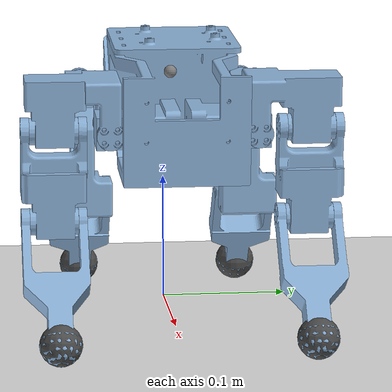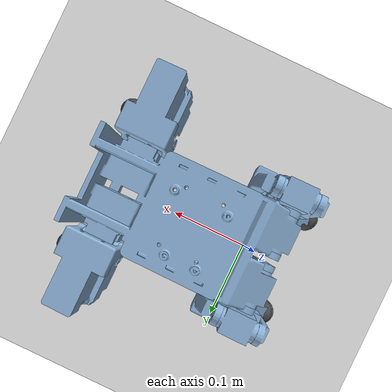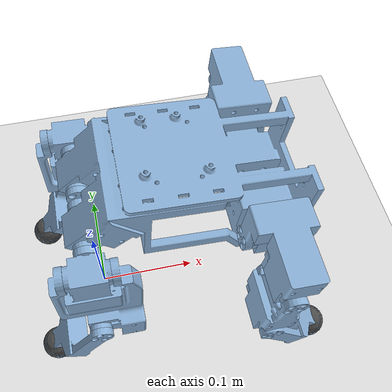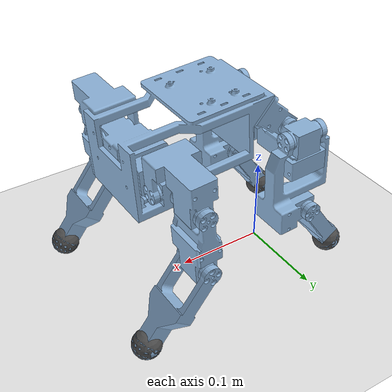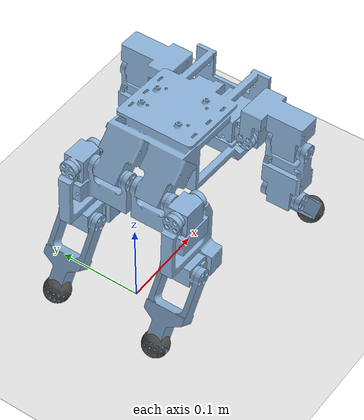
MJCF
<mujoco model="koala_walking">
  <!-- Generated by koala_hardware/mjcf.py from koala-bot CAD, walking pose (DEC-62). Do not hand-edit. -->
  <!-- visuals: one STL per body in meshes/ (mm, scaled), the body's prints unioned with its servo case(s) at the CAD socket frames; tolerance 0.2 mm / 0.6 rad -->
  <!-- omitted mass: fasteners, horn/ear screw heads, neck servo envelopes (unbought), battery, electronics, head, cables. Total 1.515 kg; CoM world 0.080713 0.000014 0.144787 m in this pose. -->
  <!-- contacts: four sphere feet (contype 1) and a torso box (contype 2) for fall detection only; link meshes do not collide -->
  <!-- joint ranges: the viewer's shared-slider clearance bounds (viewer-endpoints.json), one slider per axis for all limbs; no per-joint search exists. NOT servo limits -->
  <!-- actuator: Open Duck 7.4 V BAM placeholder, NOT the 12 V unit -->
  <!-- CAD "right" is +Y (params.py body +Y right). With X forward / Z up that is the robot LEFT in a right-handed frame; names below follow the CAD. -->
  <compiler angle="degree" meshdir="meshes"/>
  <option timestep="0.002"/>
  <visual><global offwidth="1280" offheight="960"/></visual>
  <default>
    <default class="sts3215">
      <joint type="hinge" damping="0.56" frictionloss="0.068" armature="0.027" limited="true"/>
      <position kp="13.37" forcerange="-3.23 3.23"/>
    </default>
    <default class="visual"><geom contype="0" conaffinity="0" group="1" rgba="0.55 0.7 0.85 1"/></default>
    <default class="foot"><geom type="sphere" contype="1" conaffinity="1" condim="3" friction="0.8" rgba="0.3 0.3 0.3 1"/></default>
  </default>
  <asset>
    <mesh name="torso" file="torso.stl" scale="0.001 0.001 0.001"/>
    <mesh name="rear_right_carrier" file="rear_right_carrier.stl" scale="0.001 0.001 0.001"/>
    <mesh name="rear_right_upper" file="rear_right_upper.stl" scale="0.001 0.001 0.001"/>
    <mesh name="rear_right_lower" file="rear_right_lower.stl" scale="0.001 0.001 0.001"/>
    <mesh name="rear_left_carrier" file="rear_left_carrier.stl" scale="0.001 0.001 0.001"/>
    <mesh name="rear_left_upper" file="rear_left_upper.stl" scale="0.001 0.001 0.001"/>
    <mesh name="rear_left_lower" file="rear_left_lower.stl" scale="0.001 0.001 0.001"/>
    <mesh name="front_right_carrier" file="front_right_carrier.stl" scale="0.001 0.001 0.001"/>
    <mesh name="front_right_upper" file="front_right_upper.stl" scale="0.001 0.001 0.001"/>
    <mesh name="front_right_lower" file="front_right_lower.stl" scale="0.001 0.001 0.001"/>
    <mesh name="front_left_carrier" file="front_left_carrier.stl" scale="0.001 0.001 0.001"/>
    <mesh name="front_left_upper" file="front_left_upper.stl" scale="0.001 0.001 0.001"/>
    <mesh name="front_left_lower" file="front_left_lower.stl" scale="0.001 0.001 0.001"/>
  </asset>
  <worldbody>
    <light pos="0 0 2" dir="0 0 -1" directional="true"/>
    <geom name="floor" type="plane" size="0 0 0.05" contype="1" conaffinity="3" friction="0.8" rgba="0.9 0.9 0.9 1"/>
    <body name="torso" pos="0.000000 0.000000 0.175000">
      <freejoint name="floating_base"/>
      <site name="imu" pos="0.06 0 0.02"/>
      <inertial pos="0.093193 0.000007 0.003644" mass="0.58020" fullinertia="9.354e-04 2.660e-03 2.905e-03 1.239e-07 4.711e-04 -2.104e-07"/>
      <geom name="torso_box" type="box" size="0.041000 0.047000 0.082142" pos="0.101466 0.000000 -0.001768" euler="0 93.8226 0" contype="2" conaffinity="2" group="3" rgba="0.6 0.6 0.7 0.3"/>
      <geom class="visual" type="mesh" mesh="torso"/>
      <body name="rear_right_carrier" pos="0.000000 0.026250 0.000000">
        <joint name="rear_right_hip_pitch" class="sts3215" axis="0.000000 1.000000 0.000000" range="-43.5 107.5"/>
        <inertial pos="-0.000837 0.029115 -0.019011" mass="0.10146" fullinertia="6.267e-05 3.058e-05 5.300e-05 -2.780e-07 -4.064e-07 -5.141e-06"/>
        <geom class="visual" type="mesh" mesh="rear_right_carrier"/>
        <body name="rear_right_upper" pos="0.000000 0.040050 0.000000">
          <joint name="rear_right_hip_roll" class="sts3215" axis="0.998944 0.000000 -0.045940" range="-16.0 29.25"/>
          <inertial pos="0.010219 -0.000031 -0.071767" mass="0.10506" fullinertia="7.378e-05 1.028e-04 4.894e-05 4.983e-08 8.699e-06 -4.758e-08"/>
          <geom class="visual" type="mesh" mesh="rear_right_upper"/>
          <body name="rear_right_lower" pos="-0.003905 0.000000 -0.084910">
            <joint name="rear_right_knee" class="sts3215" axis="0.000000 1.000000 0.000000" range="-61.25 89.25"/>
            <inertial pos="-0.032930 0.000628 -0.047750" mass="0.03787" fullinertia="2.733e-05 3.053e-05 1.750e-05 -2.673e-07 -1.293e-05 -3.876e-07"/>
            <geom class="visual" type="mesh" mesh="rear_right_lower"/>
            <geom name="rear_right_pad" class="foot" size="0.0160" pos="-0.051095 0.000000 -0.074090" mass="0"/>
            <site name="rear_right_foot" pos="-0.051095 0.000000 -0.074090"/>
          </body>
        </body>
      </body>
      <body name="rear_left_carrier" pos="0.000000 -0.026250 0.000000">
        <joint name="rear_left_hip_pitch" class="sts3215" axis="0.000000 1.000000 0.000000" range="-43.5 107.5"/>
        <inertial pos="-0.000837 -0.029115 -0.019011" mass="0.10146" fullinertia="6.267e-05 3.058e-05 5.300e-05 2.780e-07 -4.064e-07 5.141e-06"/>
        <geom class="visual" type="mesh" mesh="rear_left_carrier"/>
        <body name="rear_left_upper" pos="0.000000 -0.040050 0.000000">
          <joint name="rear_left_hip_roll" class="sts3215" axis="-0.998944 -0.000000 0.045940" range="-16.0 29.25"/>
          <inertial pos="0.010213 0.000031 -0.071820" mass="0.10470" fullinertia="7.337e-05 1.022e-04 4.869e-05 -4.949e-08 8.628e-06 4.706e-08"/>
          <geom class="visual" type="mesh" mesh="rear_left_upper"/>
          <body name="rear_left_lower" pos="-0.003905 0.000000 -0.084910">
            <joint name="rear_left_knee" class="sts3215" axis="0.000000 1.000000 0.000000" range="-61.25 89.25"/>
            <inertial pos="-0.032932 -0.000627 -0.047752" mass="0.03786" fullinertia="2.732e-05 3.053e-05 1.749e-05 2.672e-07 -1.293e-05 3.875e-07"/>
            <geom class="visual" type="mesh" mesh="rear_left_lower"/>
            <geom name="rear_left_pad" class="foot" size="0.0160" pos="-0.051095 0.000000 -0.074090" mass="0"/>
            <site name="rear_left_foot" pos="-0.051095 0.000000 -0.074090"/>
          </body>
        </body>
      </body>
      <body name="front_right_carrier" pos="0.149666 0.055115 -0.010000">
        <joint name="front_right_shoulder_roll" class="sts3215" axis="0.997775 0.000000 -0.066667" range="-16.0 29.25"/>
        <inertial pos="0.000940 0.030137 0.019045" mass="0.09448" fullinertia="5.414e-05 3.032e-05 4.539e-05 -3.966e-07 -3.290e-07 6.277e-06"/>
        <geom class="visual" type="mesh" mesh="front_right_carrier"/>
        <body name="front_right_upper" pos="0.000000 0.040000 0.000000">
          <joint name="front_right_shoulder_pitch" class="sts3215" axis="0.000000 1.000000 0.000000" range="-43.5 107.5"/>
          <inertial pos="-0.003796 0.000624 -0.046639" mass="0.08704" fullinertia="4.690e-05 3.700e-05 1.933e-05 -5.590e-08 -2.259e-06 -6.868e-07"/>
          <geom class="visual" type="mesh" mesh="front_right_upper"/>
          <body name="front_right_lower" pos="-0.005679 0.000000 -0.069769">
            <joint name="front_right_elbow" class="sts3215" axis="0.000000 1.000000 0.000000" range="-61.25 89.25"/>
            <inertial pos="0.038531 0.000630 -0.050037" mass="0.04145" fullinertia="3.097e-05 3.826e-05 2.199e-05 3.402e-07 1.698e-05 -4.418e-07"/>
            <geom class="visual" type="mesh" mesh="front_right_lower"/>
            <geom name="front_right_pad" class="foot" size="0.0160" pos="0.061012 0.000000 -0.079231" mass="0"/>
            <site name="front_right_foot" pos="0.061012 0.000000 -0.079231"/>
          </body>
        </body>
      </body>
      <body name="front_left_carrier" pos="0.149666 -0.055115 -0.010000">
        <joint name="front_left_shoulder_roll" class="sts3215" axis="-0.997775 -0.000000 0.066667" range="-16.0 29.25"/>
        <inertial pos="0.000940 -0.030132 0.019048" mass="0.09452" fullinertia="5.417e-05 3.033e-05 4.542e-05 3.970e-07 -3.288e-07 -6.280e-06"/>
        <geom class="visual" type="mesh" mesh="front_left_carrier"/>
        <body name="front_left_upper" pos="0.000000 -0.040000 0.000000">
          <joint name="front_left_shoulder_pitch" class="sts3215" axis="0.000000 1.000000 0.000000" range="-43.5 107.5"/>
          <inertial pos="-0.003795 -0.000625 -0.046629" mass="0.08709" fullinertia="4.694e-05 3.703e-05 1.935e-05 5.594e-08 -2.261e-06 6.873e-07"/>
          <geom class="visual" type="mesh" mesh="front_left_upper"/>
          <body name="front_left_lower" pos="-0.005679 0.000000 -0.069769">
            <joint name="front_left_elbow" class="sts3215" axis="0.000000 1.000000 0.000000" range="-61.25 89.25"/>
            <inertial pos="0.038531 -0.000630 -0.050037" mass="0.04145" fullinertia="3.097e-05 3.826e-05 2.199e-05 -3.402e-07 1.698e-05 4.418e-07"/>
            <geom class="visual" type="mesh" mesh="front_left_lower"/>
            <geom name="front_left_pad" class="foot" size="0.0160" pos="0.061012 0.000000 -0.079231" mass="0"/>
            <site name="front_left_foot" pos="0.061012 0.000000 -0.079231"/>
          </body>
        </body>
      </body>
    </body>
  </worldbody>
  <actuator>
    <position class="sts3215" name="rear_right_hip_pitch" joint="rear_right_hip_pitch" inheritrange="1"/>
    <position class="sts3215" name="rear_right_hip_roll" joint="rear_right_hip_roll" inheritrange="1"/>
    <position class="sts3215" name="rear_right_knee" joint="rear_right_knee" inheritrange="1"/>
    <position class="sts3215" name="rear_left_hip_pitch" joint="rear_left_hip_pitch" inheritrange="1"/>
    <position class="sts3215" name="rear_left_hip_roll" joint="rear_left_hip_roll" inheritrange="1"/>
    <position class="sts3215" name="rear_left_knee" joint="rear_left_knee" inheritrange="1"/>
    <position class="sts3215" name="front_right_shoulder_roll" joint="front_right_shoulder_roll" inheritrange="1"/>
    <position class="sts3215" name="front_right_shoulder_pitch" joint="front_right_shoulder_pitch" inheritrange="1"/>
    <position class="sts3215" name="front_right_elbow" joint="front_right_elbow" inheritrange="1"/>
    <position class="sts3215" name="front_left_shoulder_roll" joint="front_left_shoulder_roll" inheritrange="1"/>
    <position class="sts3215" name="front_left_shoulder_pitch" joint="front_left_shoulder_pitch" inheritrange="1"/>
    <position class="sts3215" name="front_left_elbow" joint="front_left_elbow" inheritrange="1"/>
  </actuator>
  <sensor>
    <gyro site="imu" name="gyro"/><accelerometer site="imu" name="accelerometer"/><framezaxis objtype="site" objname="imu" name="upvector"/>
    <framepos objtype="site" objname="rear_right_foot" name="rear_right_foot_pos"/>
    <framepos objtype="site" objname="rear_left_foot" name="rear_left_foot_pos"/>
    <framepos objtype="site" objname="front_right_foot" name="front_right_foot_pos"/>
    <framepos objtype="site" objname="front_left_foot" name="front_left_foot_pos"/>
  </sensor>
  <keyframe>
    <key name="home" qpos="0.000000 0.000000 0.175000 1 0 0 0 0 0 0 0 0 0 0 0 0 0 0 0" ctrl="0 0 0 0 0 0 0 0 0 0 0 0"/>
  </keyframe>
</mujoco>
